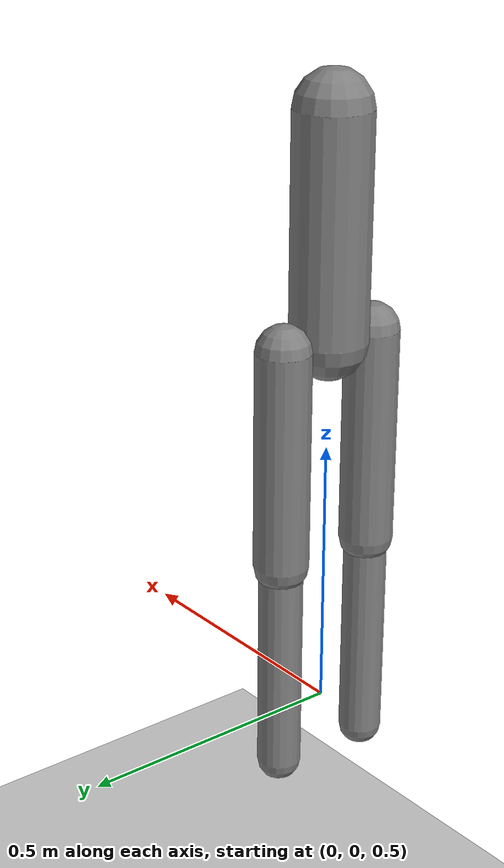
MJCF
<mujoco model="sprinter_base">
    <compiler angle="degree" coordinate="local" inertiafromgeom="true"/>
    <option integrator="RK4" timestep="0.01" gravity="0 0 -9.81"/>

    <default>
        <!-- Adding damping and armature to help with high-velocity stability -->
        <joint damping="0.5" armature="0.01"/>
    </default>

    <worldbody>
        <light diffuse=".5 .5 .5" pos="0 0 3" dir="0 0 -1"/>
        <geom name="floor" type="plane" size="10 10 .1" rgba=".8 .8 .8 1"/>

        <body name="torso" pos="0 0 1.2">
            <freejoint name="root"/>
            <geom name="torso_geom" type="capsule" size="0.07" fromto="0 0 0 0 0 0.4"/>

            <!-- Right Leg -->
            <body name="r_thigh" pos="0 -0.1 0">
                <!-- Fixed: ball joint range must start with 0 -->
                <joint name="r_hip" type="ball" range="0 100"/>
                <geom name="r_thigh_geom" type="capsule" size="0.05" fromto="0 0 0 0 0 -0.4"/>
                <body name="r_shank" pos="0 0 -0.4">
                    <joint name="r_knee" type="hinge" axis="0 1 0" range="0 150"/>
                    <geom name="r_shank_geom" type="capsule" size="0.04" fromto="0 0 0 0 0 -0.4"/>
                </body>
            </body>

            <!-- Left Leg -->
            <body name="l_thigh" pos="0 0.1 0">
                <!-- Fixed: ball joint range must start with 0 -->
                <joint name="l_hip" type="ball" range="0 100"/>
                <geom name="l_thigh_geom" type="capsule" size="0.05" fromto="0 0 0 0 0 -0.4"/>
                <body name="l_shank" pos="0 0 -0.4">
                    <joint name="l_knee" type="hinge" axis="0 1 0" range="0 150"/>
                    <geom name="l_shank_geom" type="capsule" size="0.04" fromto="0 0 0 0 0 -0.4"/>
                </body>
            </body>
        </body>
    </worldbody>
</mujoco>
